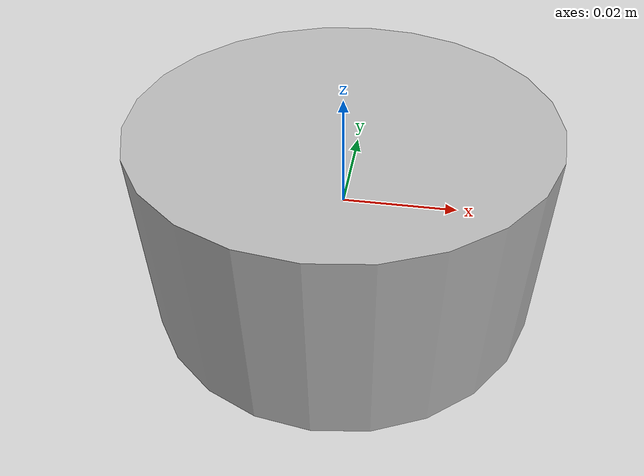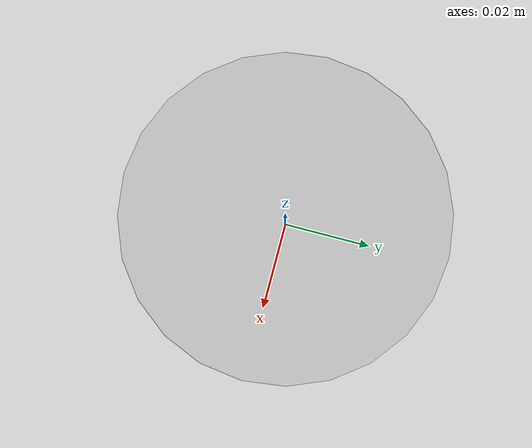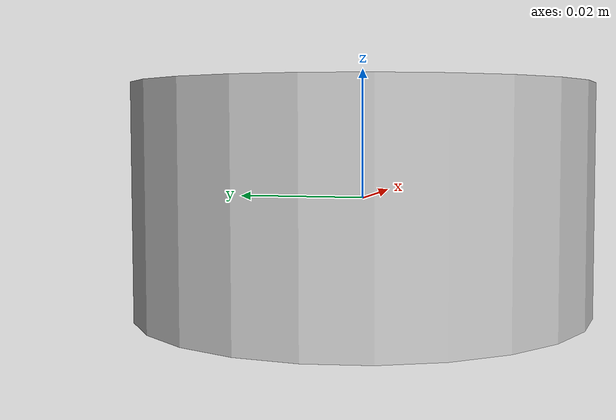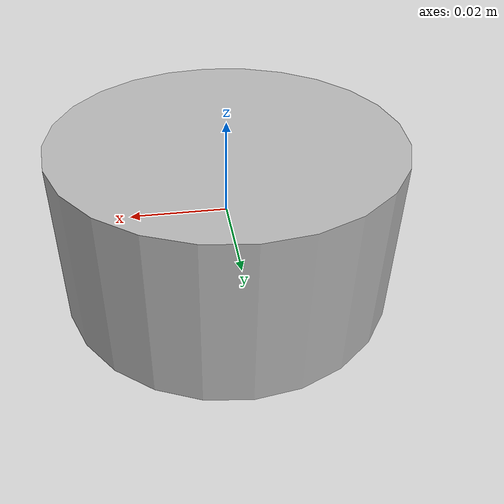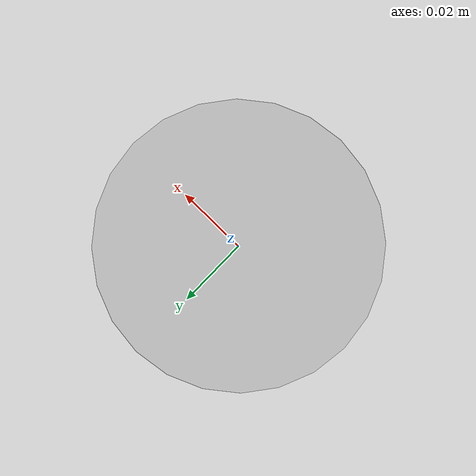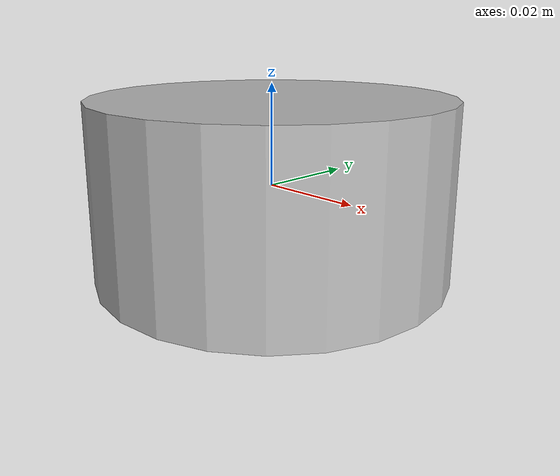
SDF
<?xml version="1.0" ?>
<sdf version="1.5">
  <model name="2D_lidar">
    <link name="laser">
      <pose frame=''>0 0 0 0 -0 0</pose>
      <visual name="lidar_visual">
        <geometry>
          <cylinder>
            <radius>0.035</radius>
            <length>0.035</length>
          </cylinder>
        </geometry>
      </visual>
      <inertial>
        <mass>0.05</mass>
        <inertia>
          <ixx>0.0025</ixx>
          <ixy>0</ixy>
          <ixz>0</ixz>
          <iyy>0.0025</iyy>
          <iyz>0</iyz>
          <izz>0.0042</izz>
        </inertia>
      </inertial>
      <collision name='collision'>
        <pose frame=''>0 0 0 0 0 0</pose>
        <geometry>
          <cylinder>
            <radius>0.035</radius>
            <length>0.035</length>
          </cylinder>
        </geometry>
      </collision>

      <sensor type="ray" name="2d_lidar">
        <pose>0 0 0 0 0 0</pose>
        <visualize>0</visualize>
        <update_rate>10</update_rate>
        <ray>
          <scan>
            <horizontal>
              <samples>1000</samples>
              <resolution>1</resolution>
              <min_angle>-3.14</min_angle>
              <max_angle>3.14</max_angle>
            </horizontal>
          </scan>
          <range>
            <min>0.10</min>
            <max>10.0</max>
            <resolution>0.01</resolution>
          </range>
          <noise>
            <type>gaussian</type>
            <mean>0.0</mean>
            <stddev>0.01</stddev>
          </noise>
        </ray>
        <plugin name="2d_lidar" filename="libgazebo_ros_laser.so">
          <topicName>scan</topicName>
          <frameName>base_link</frameName>
        </plugin>
      </sensor>
    </link>
  </model>
</sdf>
